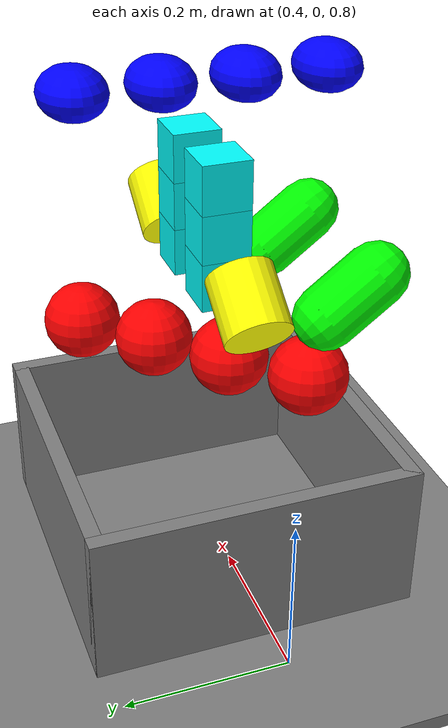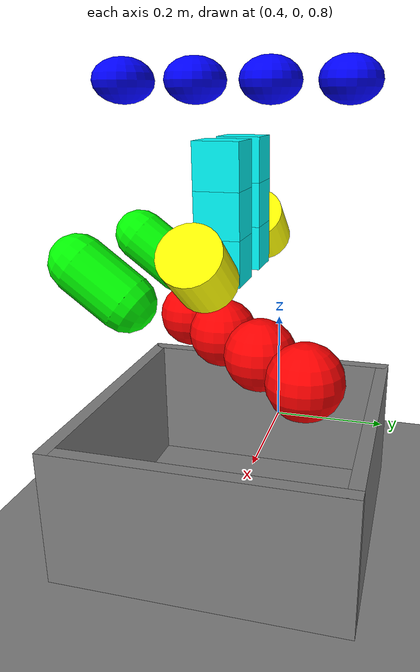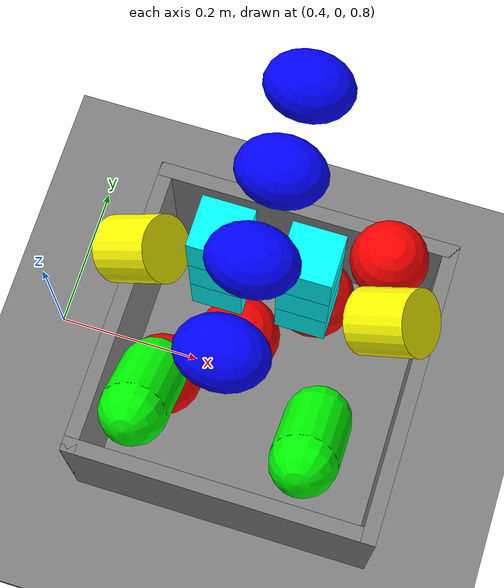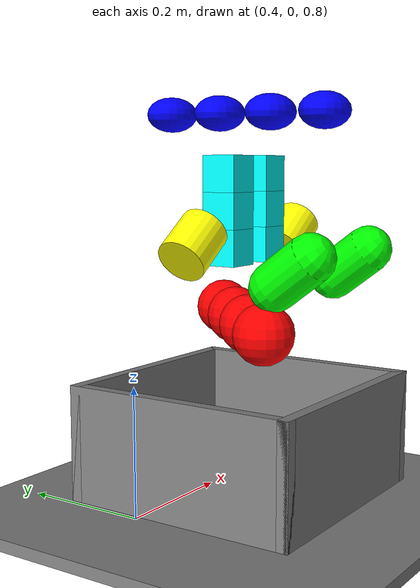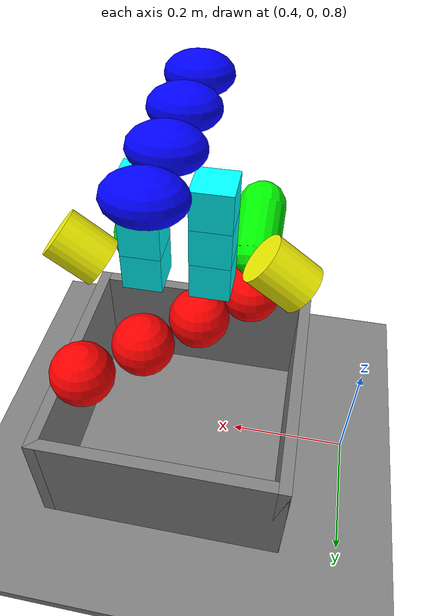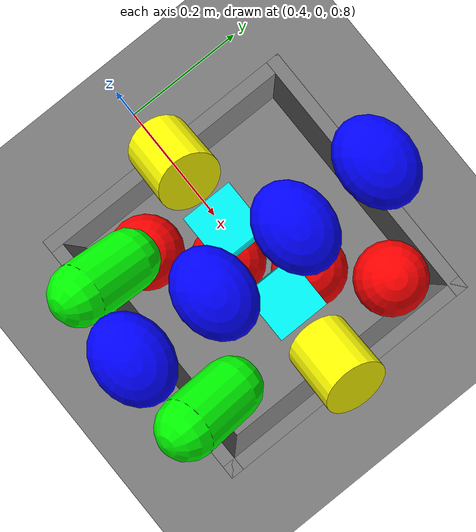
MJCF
<mujoco model="tabletop environment">
  <worldbody>
    <geom name="table" pos="0.8 0.0 0.75" type="box" size="0.5 1.0 0.01" quat="1.0 0.0 0.0 0.0"/>
    <!-- Walls of the container box -->
    <geom name="box back wall" pos="0.9 0.0 0.86" type="box" size="0.01 0.21 0.1"/>
    <geom name="box front wall" pos="0.5 0.0 0.86" type="box" size="0.01 0.21 0.1"/>
    <geom name="box left wall" pos="0.7 -0.2 0.86" type="box" size="0.21 0.01 0.1"/>
    <geom name="box right wall" pos="0.7 0.2 0.86" type="box" size="0.21 0.01 0.1"/>

	<!-- 4 spheres -->
    <body name="sphere_1" pos="0.6 -0.1 1.06">
        <freejoint name="sphere_1"/>
        <geom name="geom_sphere_1" type="sphere" size="0.05" rgba="1 0 0 1"/>
    </body>
    <body name="sphere_2" pos="0.675 -0.025 1.06">
        <freejoint name="sphere_2"/>
        <geom name="geom_sphere_2" type="sphere" size="0.05" rgba="1 0 0 1"/>
    </body>
    <body name="sphere_3" pos="0.75 0.05 1.06">
        <freejoint name="sphere_3"/>
        <geom name="geom_sphere_3" type="sphere" size="0.05" rgba="1 0 0 1"/>
    </body>
    <body name="sphere_4" pos="0.825 0.125 1.06">
        <freejoint name="sphere_4"/>
        <geom name="geom_sphere_4" type="sphere" size="0.05" rgba="1 0 0 1"/>
    </body>

    <!-- 2 capsules -->
    <body name="capsule_1" pos="0.6 -0.15 1.16" quat="1 0.5 0 0">
        <freejoint name="capsule_1"/>
        <geom name="geom_capsule_1" type="capsule" size="0.04 0.04" rgba="0 1 0 1"/>
    </body>
    <body name="capsule_2" pos="0.8 -0.15 1.16" quat="1 0.5 0 0">
        <freejoint name="capsule_2"/>
        <geom name="geom_capsule_2" type="capsule" size="0.04 0.04" rgba="0 1 0 1"/>
    </body>

	<!-- 4 ellipsoids -->
    <body name="ellipsoid_1" pos="0.7 -0.15 1.41">
        <freejoint name="ellipsoid_1"/>
        <geom name="geom_ellipsoid_1" type="ellipsoid" size="0.05 0.04 0.03" rgba="0 0 1 1"/>
    </body>
    <body name="ellipsoid_2" pos="0.7 -0.05 1.41">
        <freejoint name="ellipsoid_2"/>
        <geom name="geom_ellipsoid_2" type="ellipsoid" size="0.05 0.04 0.03" rgba="0 0 1 1"/>
    </body>
    <body name="ellipsoid_3" pos="0.7 0.05 1.41">
        <freejoint name="ellipsoid_3"/>
        <geom name="geom_ellipsoid_3" type="ellipsoid" size="0.05 0.04 0.03" rgba="0 0 1 1"/>
    </body>
    <body name="ellipsoid_4" pos="0.7 0.15 1.41">
        <freejoint name="ellipsoid_4"/>
        <geom name="geom_ellipsoid_4" type="ellipsoid" size="0.05 0.04 0.03" rgba="0 0 1 1"/>
    </body>

    <!-- 2 cylinders -->
    <body name="cylinder_1" pos="0.55 0 1.2" quat="0 0.5 0 1">
        <freejoint name="cylinder_1"/>
        <geom name="geom_cylinder_1" type="cylinder" size="0.04 0.04" rgba="1 1 0 1"/>
    </body>
    <body name="cylinder_2" pos="0.85 0 1.2" quat="0 0.5 0 1">
        <freejoint name="cylinder_2"/>
        <geom name="geom_cylinder_2" type="cylinder" size="0.04 0.04" rgba="1 1 0 1"/>
    </body>

    <!-- Two stacks of 3 boxes -->
    <body name="box_1" pos="0.65 0 1.19">
        <freejoint name="box_1"/>
        <geom name="geom_box_1" type="box" size="0.03 0.03 0.03" rgba="0 1 1 1"/>
    </body>
    <body name="box_2" pos="0.65 0 1.25">
        <freejoint name="box_2"/>
        <geom name="geom_box_2" type="box" size="0.03 0.03 0.03" rgba="0 1 1 1"/>
    </body>
    <body name="box_3" pos="0.65 0 1.31">
        <freejoint name="box_3"/>
        <geom name="geom_box_3" type="box" size="0.03 0.03 0.03" rgba="0 1 1 1"/>
    </body>
    <body name="box_4" pos="0.75 0 1.19">
        <freejoint name="box_4"/>
        <geom name="geom_box_4" type="box" size="0.03 0.03 0.03" rgba="0 1 1 1"/>
    </body>
    <body name="box_5" pos="0.75 0 1.25">
        <freejoint name="box_5"/>
        <geom name="geom_box_5" type="box" size="0.03 0.03 0.03" rgba="0 1 1 1"/>
    </body>
    <body name="box_6" pos="0.75 0 1.31">
        <freejoint name="box_6"/>
        <geom name="geom_box_6" type="box" size="0.03 0.03 0.03" rgba="0 1 1 1"/>
    </body>
  </worldbody>
</mujoco>
